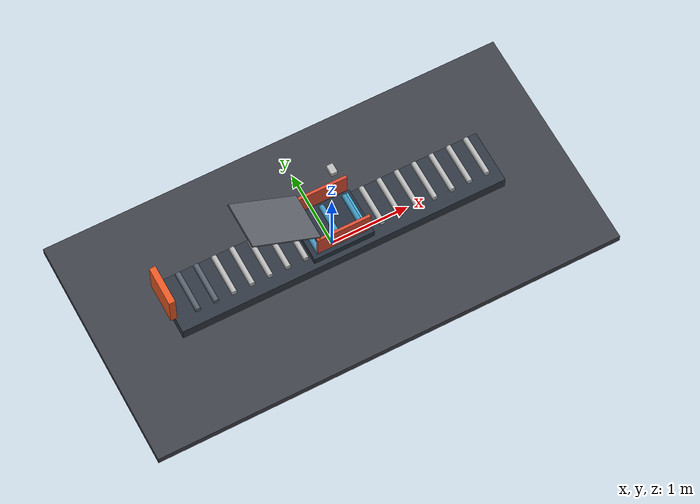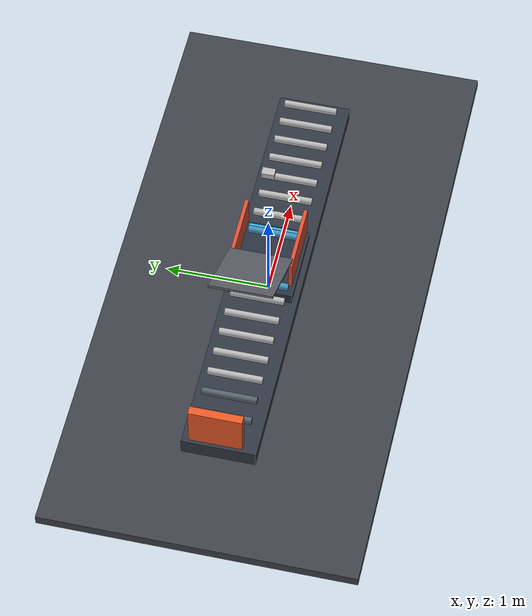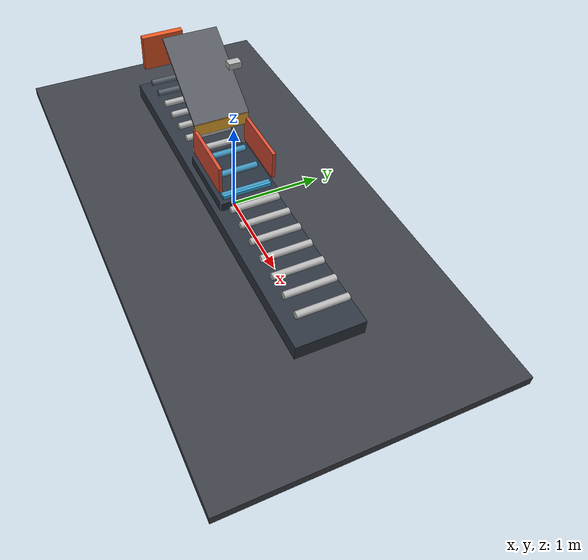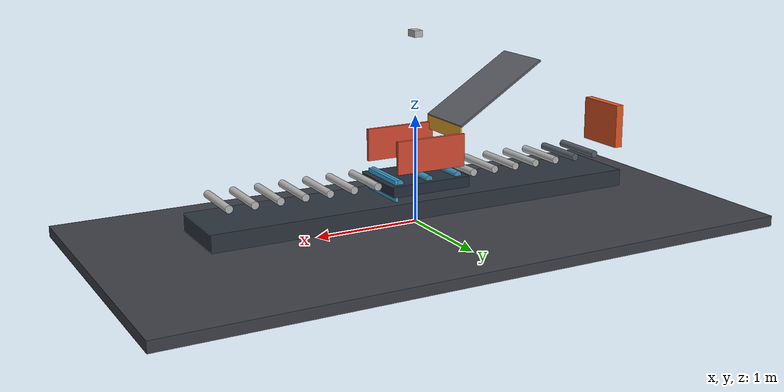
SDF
<?xml version="1.0"?>
<sdf version="1.10">
  <world name="kty_mechatronics">
    <gravity>0 0 -9.81</gravity>
    <physics name="kty_mechatronics_physics" type="ignored">
      <max_step_size>0.001</max_step_size>
      <real_time_factor>1.0</real_time_factor>
      <real_time_update_rate>1000</real_time_update_rate>
    </physics>

    <plugin filename="gz-sim-physics-system" name="gz::sim::systems::Physics"/>
    <plugin filename="gz-sim-user-commands-system" name="gz::sim::systems::UserCommands"/>
    <plugin filename="gz-sim-scene-broadcaster-system" name="gz::sim::systems::SceneBroadcaster"/>
    <plugin filename="gz-sim-sensors-system" name="gz::sim::systems::Sensors">
      <render_engine>ogre2</render_engine>
    </plugin>

    <scene>
      <ambient>0.48 0.48 0.48</ambient>
      <background>0.13 0.15 0.19</background>
      <grid>true</grid>
    </scene>

    <light type="directional" name="sun">
      <pose>-3 -4 8 0 0 0</pose>
      <cast_shadows>true</cast_shadows>
      <diffuse>0.95 0.95 0.95 1</diffuse>
      <specular>0.25 0.25 0.25 1</specular>
      <direction>0.3 0.4 -1.0</direction>
    </light>

    <model name="floor">
      <static>true</static>
      <pose>0 0 -0.05 0 0 0</pose>
      <link name="floor">
        <collision name="collision"><geometry><box><size>6.0 3.0 0.10</size></box></geometry></collision>
        <visual name="visual"><geometry><box><size>6.0 3.0 0.10</size></box></geometry><material><ambient>0.17 0.18 0.20 1</ambient><diffuse>0.24 0.25 0.28 1</diffuse></material></visual>
      </link>
    </model>

    <model name="kty_mechatronics_machine">
      <self_collide>false</self_collide>
      <link name="base">
        <pose>0 0 0.22 0 0 0</pose>
        <inertial><mass>200</mass><inertia><ixx>30</ixx><iyy>80</iyy><izz>100</izz><ixy>0</ixy><ixz>0</ixz><iyz>0</iyz></inertia></inertial>
        <collision name="frame"><geometry><box><size>4.20 0.70 0.16</size></box></geometry></collision>
        <visual name="frame_visual"><geometry><box><size>4.20 0.70 0.16</size></box></geometry><material><ambient>0.10 0.12 0.15 1</ambient><diffuse>0.18 0.21 0.25 1</diffuse></material></visual>
      </link>
      <joint name="base_world_fixed" type="fixed"><parent>world</parent><child>base</child></joint>

      <link name="vibration_deck">
        <pose>0 0 0.405 0 0 0</pose>
        <inertial><mass>35</mass><inertia><ixx>1.8</ixx><iyy>2.4</iyy><izz>3.0</izz><ixy>0</ixy><ixz>0</ixz><iyz>0</iyz></inertia></inertial>
        <collision name="deck"><geometry><box><size>0.78 0.62 0.10</size></box></geometry></collision>
        <visual name="deck_visual"><geometry><box><size>0.78 0.62 0.10</size></box></geometry><material><ambient>0.08 0.10 0.13 1</ambient><diffuse>0.15 0.19 0.24 1</diffuse></material></visual>
      </link>
      <joint name="vibration_joint" type="prismatic">
        <parent>base</parent><child>vibration_deck</child>
        <axis><xyz>0 0 1</xyz><limit><lower>-0.004</lower><upper>0.004</upper><effort>8000</effort><velocity>1.5</velocity></limit><dynamics><damping>180</damping><friction>10</friction></dynamics></axis>
      </joint>

      <link name="infeed_roller_01"><pose>-1.850 0 0.465 1.57079632679 0 0</pose><inertial><mass>0.45</mass><inertia><ixx>0.0105</ixx><iyy>0.00030</iyy><izz>0.0105</izz><ixy>0</ixy><ixz>0</ixz><iyz>0</iyz></inertia></inertial><collision name="collision"><geometry><cylinder><radius>0.035</radius><length>0.52</length></cylinder></geometry><surface><friction><ode><mu>1.20</mu><mu2>0.90</mu2><slip1>0.01</slip1><slip2>0.01</slip2></ode></friction><bounce><restitution_coefficient>0.01</restitution_coefficient><threshold>0.2</threshold></bounce><contact><ode><kp>8000000</kp><kd>180</kd><max_vel>0.05</max_vel><min_depth>0.0002</min_depth></ode></contact></surface></collision><visual name="visual"><geometry><cylinder><radius>0.035</radius><length>0.52</length></cylinder></geometry><material><ambient>0.19 0.22 0.25 1</ambient><diffuse>0.34 0.38 0.42 1</diffuse><specular>0.35 0.35 0.35 1</specular></material></visual></link>
      <joint name="infeed_roller_01_joint" type="revolute"><parent>base</parent><child>infeed_roller_01</child><axis><xyz>0 1 0</xyz><limit><effort>120</effort><velocity>40</velocity></limit><dynamics><damping>0.02</damping><friction>0.01</friction></dynamics></axis></joint>
      <link name="infeed_roller_02"><pose>-1.620 0 0.465 1.57079632679 0 0</pose><inertial><mass>0.45</mass><inertia><ixx>0.0105</ixx><iyy>0.00030</iyy><izz>0.0105</izz><ixy>0</ixy><ixz>0</ixz><iyz>0</iyz></inertia></inertial><collision name="collision"><geometry><cylinder><radius>0.035</radius><length>0.52</length></cylinder></geometry><surface><friction><ode><mu>1.20</mu><mu2>0.90</mu2><slip1>0.01</slip1><slip2>0.01</slip2></ode></friction></surface></collision><visual name="visual"><geometry><cylinder><radius>0.035</radius><length>0.52</length></cylinder></geometry><material><ambient>0.19 0.22 0.25 1</ambient><diffuse>0.34 0.38 0.42 1</diffuse></material></visual></link>
      <joint name="infeed_roller_02_joint" type="revolute"><parent>base</parent><child>infeed_roller_02</child><axis><xyz>0 1 0</xyz><limit><effort>120</effort><velocity>40</velocity></limit></axis></joint>
      <link name="infeed_roller_03"><pose>-1.390 0 0.465 1.57079632679 0 0</pose><inertial><mass>0.45</mass><inertia><ixx>0.0105</ixx><iyy>0.00030</iyy><izz>0.0105</izz><ixy>0</ixy><ixz>0</ixz><iyz>0</iyz></inertia></inertial><collision name="collision"><geometry><cylinder><radius>0.035</radius><length>0.52</length></cylinder></geometry><surface><friction><ode><mu>1.20</mu><mu2>0.90</mu2></ode></friction></surface></collision><visual name="visual"><geometry><cylinder><radius>0.035</radius><length>0.52</length></cylinder></geometry></visual></link>
      <joint name="infeed_roller_03_joint" type="revolute"><parent>base</parent><child>infeed_roller_03</child><axis><xyz>0 1 0</xyz><limit><effort>120</effort><velocity>40</velocity></limit></axis></joint>
      <link name="infeed_roller_04"><pose>-1.160 0 0.465 1.57079632679 0 0</pose><inertial><mass>0.45</mass><inertia><ixx>0.0105</ixx><iyy>0.00030</iyy><izz>0.0105</izz><ixy>0</ixy><ixz>0</ixz><iyz>0</iyz></inertia></inertial><collision name="collision"><geometry><cylinder><radius>0.035</radius><length>0.52</length></cylinder></geometry><surface><friction><ode><mu>1.20</mu><mu2>0.90</mu2></ode></friction></surface></collision><visual name="visual"><geometry><cylinder><radius>0.035</radius><length>0.52</length></cylinder></geometry></visual></link>
      <joint name="infeed_roller_04_joint" type="revolute"><parent>base</parent><child>infeed_roller_04</child><axis><xyz>0 1 0</xyz><limit><effort>120</effort><velocity>40</velocity></limit></axis></joint>
      <link name="infeed_roller_05"><pose>-0.930 0 0.465 1.57079632679 0 0</pose><inertial><mass>0.45</mass><inertia><ixx>0.0105</ixx><iyy>0.00030</iyy><izz>0.0105</izz><ixy>0</ixy><ixz>0</ixz><iyz>0</iyz></inertia></inertial><collision name="collision"><geometry><cylinder><radius>0.035</radius><length>0.52</length></cylinder></geometry><surface><friction><ode><mu>1.20</mu><mu2>0.90</mu2></ode></friction></surface></collision><visual name="visual"><geometry><cylinder><radius>0.035</radius><length>0.52</length></cylinder></geometry></visual></link>
      <joint name="infeed_roller_05_joint" type="revolute"><parent>base</parent><child>infeed_roller_05</child><axis><xyz>0 1 0</xyz><limit><effort>120</effort><velocity>40</velocity></limit></axis></joint>
      <link name="infeed_roller_06"><pose>-0.700 0 0.465 1.57079632679 0 0</pose><inertial><mass>0.45</mass><inertia><ixx>0.0105</ixx><iyy>0.00030</iyy><izz>0.0105</izz><ixy>0</ixy><ixz>0</ixz><iyz>0</iyz></inertia></inertial><collision name="collision"><geometry><cylinder><radius>0.035</radius><length>0.52</length></cylinder></geometry><surface><friction><ode><mu>1.20</mu><mu2>0.90</mu2></ode></friction></surface></collision><visual name="visual"><geometry><cylinder><radius>0.035</radius><length>0.52</length></cylinder></geometry></visual></link>
      <joint name="infeed_roller_06_joint" type="revolute"><parent>base</parent><child>infeed_roller_06</child><axis><xyz>0 1 0</xyz><limit><effort>120</effort><velocity>40</velocity></limit></axis></joint>
      <link name="infeed_roller_07"><pose>-0.470 0 0.465 1.57079632679 0 0</pose><inertial><mass>0.45</mass><inertia><ixx>0.0105</ixx><iyy>0.00030</iyy><izz>0.0105</izz><ixy>0</ixy><ixz>0</ixz><iyz>0</iyz></inertia></inertial><collision name="collision"><geometry><cylinder><radius>0.035</radius><length>0.52</length></cylinder></geometry><surface><friction><ode><mu>1.20</mu><mu2>0.90</mu2></ode></friction></surface></collision><visual name="visual"><geometry><cylinder><radius>0.035</radius><length>0.52</length></cylinder></geometry></visual></link>
      <joint name="infeed_roller_07_joint" type="revolute"><parent>base</parent><child>infeed_roller_07</child><axis><xyz>0 1 0</xyz><limit><effort>120</effort><velocity>40</velocity></limit></axis></joint>

      <link name="active_roller_01"><pose>-0.300 0 0.465 1.57079632679 0 0</pose><inertial><mass>0.45</mass><inertia><ixx>0.0105</ixx><iyy>0.00030</iyy><izz>0.0105</izz><ixy>0</ixy><ixz>0</ixz><iyz>0</iyz></inertia></inertial><collision name="collision"><geometry><cylinder><radius>0.035</radius><length>0.52</length></cylinder></geometry><surface><friction><ode><mu>1.20</mu><mu2>0.90</mu2></ode></friction></surface></collision><visual name="visual"><geometry><cylinder><radius>0.035</radius><length>0.52</length></cylinder></geometry><material><ambient>0.20 0.42 0.55 1</ambient><diffuse>0.25 0.58 0.74 1</diffuse></material></visual></link>
      <joint name="active_roller_01_joint" type="revolute"><parent>vibration_deck</parent><child>active_roller_01</child><axis><xyz>0 1 0</xyz><limit><effort>120</effort><velocity>40</velocity></limit></axis></joint>
      <link name="active_roller_02"><pose>0 0 0.465 1.57079632679 0 0</pose><inertial><mass>0.45</mass><inertia><ixx>0.0105</ixx><iyy>0.00030</iyy><izz>0.0105</izz><ixy>0</ixy><ixz>0</ixz><iyz>0</iyz></inertia></inertial><collision name="collision"><geometry><cylinder><radius>0.035</radius><length>0.52</length></cylinder></geometry><surface><friction><ode><mu>1.20</mu><mu2>0.90</mu2></ode></friction></surface></collision><visual name="visual"><geometry><cylinder><radius>0.035</radius><length>0.52</length></cylinder></geometry><material><ambient>0.20 0.42 0.55 1</ambient><diffuse>0.25 0.58 0.74 1</diffuse></material></visual></link>
      <joint name="active_roller_02_joint" type="revolute"><parent>vibration_deck</parent><child>active_roller_02</child><axis><xyz>0 1 0</xyz><limit><effort>120</effort><velocity>40</velocity></limit></axis></joint>
      <link name="active_roller_03"><pose>0.300 0 0.465 1.57079632679 0 0</pose><inertial><mass>0.45</mass><inertia><ixx>0.0105</ixx><iyy>0.00030</iyy><izz>0.0105</izz><ixy>0</ixy><ixz>0</ixz><iyz>0</iyz></inertia></inertial><collision name="collision"><geometry><cylinder><radius>0.035</radius><length>0.52</length></cylinder></geometry><surface><friction><ode><mu>1.20</mu><mu2>0.90</mu2></ode></friction></surface></collision><visual name="visual"><geometry><cylinder><radius>0.035</radius><length>0.52</length></cylinder></geometry><material><ambient>0.20 0.42 0.55 1</ambient><diffuse>0.25 0.58 0.74 1</diffuse></material></visual></link>
      <joint name="active_roller_03_joint" type="revolute"><parent>vibration_deck</parent><child>active_roller_03</child><axis><xyz>0 1 0</xyz><limit><effort>120</effort><velocity>40</velocity></limit></axis></joint>

      <link name="outfeed_roller_01"><pose>0.520 0 0.465 1.57079632679 0 0</pose><inertial><mass>0.45</mass><inertia><ixx>0.0105</ixx><iyy>0.00030</iyy><izz>0.0105</izz><ixy>0</ixy><ixz>0</ixz><iyz>0</iyz></inertia></inertial><collision name="collision"><geometry><cylinder><radius>0.035</radius><length>0.52</length></cylinder></geometry><surface><friction><ode><mu>1.20</mu><mu2>0.90</mu2></ode></friction></surface></collision><visual name="visual"><geometry><cylinder><radius>0.035</radius><length>0.52</length></cylinder></geometry></visual></link>
      <joint name="outfeed_roller_01_joint" type="revolute"><parent>base</parent><child>outfeed_roller_01</child><axis><xyz>0 1 0</xyz><limit><effort>120</effort><velocity>40</velocity></limit></axis></joint>
      <link name="outfeed_roller_02"><pose>0.750 0 0.465 1.57079632679 0 0</pose><inertial><mass>0.45</mass><inertia><ixx>0.0105</ixx><iyy>0.00030</iyy><izz>0.0105</izz><ixy>0</ixy><ixz>0</ixz><iyz>0</iyz></inertia></inertial><collision name="collision"><geometry><cylinder><radius>0.035</radius><length>0.52</length></cylinder></geometry><surface><friction><ode><mu>1.20</mu><mu2>0.90</mu2></ode></friction></surface></collision><visual name="visual"><geometry><cylinder><radius>0.035</radius><length>0.52</length></cylinder></geometry></visual></link>
      <joint name="outfeed_roller_02_joint" type="revolute"><parent>base</parent><child>outfeed_roller_02</child><axis><xyz>0 1 0</xyz><limit><effort>120</effort><velocity>40</velocity></limit></axis></joint>
      <link name="outfeed_roller_03"><pose>0.980 0 0.465 1.57079632679 0 0</pose><inertial><mass>0.45</mass><inertia><ixx>0.0105</ixx><iyy>0.00030</iyy><izz>0.0105</izz><ixy>0</ixy><ixz>0</ixz><iyz>0</iyz></inertia></inertial><collision name="collision"><geometry><cylinder><radius>0.035</radius><length>0.52</length></cylinder></geometry><surface><friction><ode><mu>1.20</mu><mu2>0.90</mu2></ode></friction></surface></collision><visual name="visual"><geometry><cylinder><radius>0.035</radius><length>0.52</length></cylinder></geometry></visual></link>
      <joint name="outfeed_roller_03_joint" type="revolute"><parent>base</parent><child>outfeed_roller_03</child><axis><xyz>0 1 0</xyz><limit><effort>120</effort><velocity>40</velocity></limit></axis></joint>
      <link name="outfeed_roller_04"><pose>1.210 0 0.465 1.57079632679 0 0</pose><inertial><mass>0.45</mass><inertia><ixx>0.0105</ixx><iyy>0.00030</iyy><izz>0.0105</izz><ixy>0</ixy><ixz>0</ixz><iyz>0</iyz></inertia></inertial><collision name="collision"><geometry><cylinder><radius>0.035</radius><length>0.52</length></cylinder></geometry><surface><friction><ode><mu>1.20</mu><mu2>0.90</mu2></ode></friction></surface></collision><visual name="visual"><geometry><cylinder><radius>0.035</radius><length>0.52</length></cylinder></geometry></visual></link>
      <joint name="outfeed_roller_04_joint" type="revolute"><parent>base</parent><child>outfeed_roller_04</child><axis><xyz>0 1 0</xyz><limit><effort>120</effort><velocity>40</velocity></limit></axis></joint>
      <link name="outfeed_roller_05"><pose>1.440 0 0.465 1.57079632679 0 0</pose><inertial><mass>0.45</mass><inertia><ixx>0.0105</ixx><iyy>0.00030</iyy><izz>0.0105</izz><ixy>0</ixy><ixz>0</ixz><iyz>0</iyz></inertia></inertial><collision name="collision"><geometry><cylinder><radius>0.035</radius><length>0.52</length></cylinder></geometry><surface><friction><ode><mu>1.20</mu><mu2>0.90</mu2></ode></friction></surface></collision><visual name="visual"><geometry><cylinder><radius>0.035</radius><length>0.52</length></cylinder></geometry></visual></link>
      <joint name="outfeed_roller_05_joint" type="revolute"><parent>base</parent><child>outfeed_roller_05</child><axis><xyz>0 1 0</xyz><limit><effort>120</effort><velocity>40</velocity></limit></axis></joint>
      <link name="outfeed_roller_06"><pose>1.670 0 0.465 1.57079632679 0 0</pose><inertial><mass>0.45</mass><inertia><ixx>0.0105</ixx><iyy>0.00030</iyy><izz>0.0105</izz><ixy>0</ixy><ixz>0</ixz><iyz>0</iyz></inertia></inertial><collision name="collision"><geometry><cylinder><radius>0.035</radius><length>0.52</length></cylinder></geometry><surface><friction><ode><mu>1.20</mu><mu2>0.90</mu2></ode></friction></surface></collision><visual name="visual"><geometry><cylinder><radius>0.035</radius><length>0.52</length></cylinder></geometry></visual></link>
      <joint name="outfeed_roller_06_joint" type="revolute"><parent>base</parent><child>outfeed_roller_06</child><axis><xyz>0 1 0</xyz><limit><effort>120</effort><velocity>40</velocity></limit></axis></joint>
      <link name="outfeed_roller_07"><pose>1.900 0 0.465 1.57079632679 0 0</pose><inertial><mass>0.45</mass><inertia><ixx>0.0105</ixx><iyy>0.00030</iyy><izz>0.0105</izz><ixy>0</ixy><ixz>0</ixz><iyz>0</iyz></inertia></inertial><collision name="collision"><geometry><cylinder><radius>0.035</radius><length>0.52</length></cylinder></geometry><surface><friction><ode><mu>1.20</mu><mu2>0.90</mu2></ode></friction></surface></collision><visual name="visual"><geometry><cylinder><radius>0.035</radius><length>0.52</length></cylinder></geometry></visual></link>
      <joint name="outfeed_roller_07_joint" type="revolute"><parent>base</parent><child>outfeed_roller_07</child><axis><xyz>0 1 0</xyz><limit><effort>120</effort><velocity>40</velocity></limit></axis></joint>

      <link name="pusher"><pose>-2.15 0 0.705 0 0 0</pose><inertial><mass>12</mass><inertia><ixx>0.22</ixx><iyy>0.20</iyy><izz>0.18</izz><ixy>0</ixy><ixz>0</ixz><iyz>0</iyz></inertia></inertial><collision name="plate"><geometry><box><size>0.08 0.50 0.42</size></box></geometry></collision><visual name="plate_visual"><geometry><box><size>0.08 0.50 0.42</size></box></geometry><material><ambient>0.72 0.26 0.12 1</ambient><diffuse>0.90 0.34 0.14 1</diffuse></material></visual></link>
      <joint name="pusher_joint" type="prismatic"><parent>base</parent><child>pusher</child><axis><xyz>1 0 0</xyz><limit><lower>0</lower><upper>0.95</upper><effort>2500</effort><velocity>0.75</velocity></limit><dynamics><damping>80</damping><friction>15</friction></dynamics></axis></joint>

      <link name="clamp_neg_y"><pose>0 -0.285 0.705 0 0 0</pose><inertial><mass>8</mass><inertia><ixx>0.16</ixx><iyy>0.30</iyy><izz>0.30</izz><ixy>0</ixy><ixz>0</ixz><iyz>0</iyz></inertia></inertial><collision name="pad"><geometry><box><size>0.68 0.035 0.30</size></box></geometry><surface><friction><ode><mu>1.0</mu><mu2>1.0</mu2></ode></friction></surface></collision><visual name="pad_visual"><geometry><box><size>0.68 0.035 0.30</size></box></geometry><material><ambient>0.70 0.22 0.16 1</ambient><diffuse>0.85 0.30 0.20 1</diffuse></material></visual></link>
      <joint name="clamp_neg_y_joint" type="prismatic"><parent>vibration_deck</parent><child>clamp_neg_y</child><axis><xyz>0 1 0</xyz><limit><lower>0</lower><upper>0.075</upper><effort>1600</effort><velocity>0.25</velocity></limit><dynamics><damping>80</damping><friction>8</friction></dynamics></axis></joint>
      <link name="clamp_pos_y"><pose>0 0.285 0.705 0 0 0</pose><inertial><mass>8</mass><inertia><ixx>0.16</ixx><iyy>0.30</iyy><izz>0.30</izz><ixy>0</ixy><ixz>0</ixz><iyz>0</iyz></inertia></inertial><collision name="pad"><geometry><box><size>0.68 0.035 0.30</size></box></geometry><surface><friction><ode><mu>1.0</mu><mu2>1.0</mu2></ode></friction></surface></collision><visual name="pad_visual"><geometry><box><size>0.68 0.035 0.30</size></box></geometry><material><ambient>0.70 0.22 0.16 1</ambient><diffuse>0.85 0.30 0.20 1</diffuse></material></visual></link>
      <joint name="clamp_pos_y_joint" type="prismatic"><parent>vibration_deck</parent><child>clamp_pos_y</child><axis><xyz>0 -1 0</xyz><limit><lower>0</lower><upper>0.075</upper><effort>1600</effort><velocity>0.25</velocity></limit><dynamics><damping>80</damping><friction>8</friction></dynamics></axis></joint>

      <link name="locator_stop"><pose>0.335 0 0.385 0 0 0</pose><inertial><mass>6</mass><inertia><ixx>0.08</ixx><iyy>0.05</iyy><izz>0.08</izz><ixy>0</ixy><ixz>0</ixz><iyz>0</iyz></inertia></inertial><collision name="blade"><geometry><box><size>0.025 0.52 0.22</size></box></geometry></collision><visual name="blade_visual"><geometry><box><size>0.025 0.52 0.22</size></box></geometry><material><ambient>0.18 0.55 0.72 1</ambient><diffuse>0.24 0.70 0.90 1</diffuse></material></visual></link>
      <joint name="locator_stop_joint" type="prismatic"><parent>vibration_deck</parent><child>locator_stop</child><axis><xyz>0 0 1</xyz><limit><lower>0</lower><upper>0.225</upper><effort>1200</effort><velocity>0.7</velocity></limit><dynamics><damping>60</damping><friction>5</friction></dynamics></axis></joint>

      <link name="gate"><pose>-0.305 0 0.920 0 0 0</pose><inertial><pose>0 0 -0.065 0 0 0</pose><mass>4.0</mass><inertia><ixx>0.12</ixx><iyy>0.03</iyy><izz>0.12</izz><ixy>0</ixy><ixz>0</ixz><iyz>0</iyz></inertia></inertial><collision name="blade"><pose>0 0 -0.065 0 0 0</pose><geometry><box><size>0.012 0.59 0.13</size></box></geometry></collision><visual name="blade_visual"><pose>0 0 -0.065 0 0 0</pose><geometry><box><size>0.012 0.59 0.13</size></box></geometry><material><ambient>0.78 0.55 0.12 1</ambient><diffuse>0.95 0.68 0.18 1</diffuse></material></visual></link>
      <joint name="gate_joint" type="revolute"><parent>base</parent><child>gate</child><axis><xyz>0 1 0</xyz><limit><lower>0</lower><upper>1.35</upper><effort>900</effort><velocity>3.5</velocity></limit><dynamics><damping>12</damping><friction>2</friction></dynamics></axis></joint>

      <plugin filename="gz-sim-joint-controller-system" name="gz::sim::systems::JointController"><joint_name>infeed_roller_01_joint</joint_name><joint_name>infeed_roller_02_joint</joint_name><joint_name>infeed_roller_03_joint</joint_name><joint_name>infeed_roller_04_joint</joint_name><joint_name>infeed_roller_05_joint</joint_name><joint_name>infeed_roller_06_joint</joint_name><joint_name>infeed_roller_07_joint</joint_name><topic>/kty/mech/infeed_rollers/cmd_vel</topic><initial_velocity>0</initial_velocity></plugin>
      <plugin filename="gz-sim-joint-controller-system" name="gz::sim::systems::JointController"><joint_name>active_roller_01_joint</joint_name><joint_name>active_roller_02_joint</joint_name><joint_name>active_roller_03_joint</joint_name><topic>/kty/mech/active_rollers/cmd_vel</topic><initial_velocity>0</initial_velocity></plugin>
      <plugin filename="gz-sim-joint-controller-system" name="gz::sim::systems::JointController"><joint_name>outfeed_roller_01_joint</joint_name><joint_name>outfeed_roller_02_joint</joint_name><joint_name>outfeed_roller_03_joint</joint_name><joint_name>outfeed_roller_04_joint</joint_name><joint_name>outfeed_roller_05_joint</joint_name><joint_name>outfeed_roller_06_joint</joint_name><joint_name>outfeed_roller_07_joint</joint_name><topic>/kty/mech/outfeed_rollers/cmd_vel</topic><initial_velocity>0</initial_velocity></plugin>
      <plugin filename="gz-sim-joint-position-controller-system" name="gz::sim::systems::JointPositionController"><joint_name>pusher_joint</joint_name><topic>/kty/mech/pusher/cmd_pos</topic><p_gain>2800</p_gain><i_gain>0</i_gain><d_gain>220</d_gain><cmd_max>2500</cmd_max><cmd_min>-2500</cmd_min></plugin>
      <plugin filename="gz-sim-joint-position-controller-system" name="gz::sim::systems::JointPositionController"><joint_name>clamp_neg_y_joint</joint_name><joint_name>clamp_pos_y_joint</joint_name><topic>/kty/mech/clamps/cmd_pos</topic><p_gain>5000</p_gain><i_gain>0</i_gain><d_gain>180</d_gain><cmd_max>1600</cmd_max><cmd_min>-1600</cmd_min></plugin>
      <plugin filename="gz-sim-joint-position-controller-system" name="gz::sim::systems::JointPositionController"><joint_name>vibration_joint</joint_name><topic>/kty/mech/vibration/cmd_pos</topic><p_gain>180000</p_gain><i_gain>0</i_gain><d_gain>1800</d_gain><cmd_max>8000</cmd_max><cmd_min>-8000</cmd_min></plugin>
      <plugin filename="gz-sim-joint-position-controller-system" name="gz::sim::systems::JointPositionController"><joint_name>locator_stop_joint</joint_name><topic>/kty/mech/locator_stop/cmd_pos</topic><p_gain>4200</p_gain><i_gain>0</i_gain><d_gain>180</d_gain><cmd_max>1200</cmd_max><cmd_min>-1200</cmd_min></plugin>
      <plugin filename="gz-sim-joint-position-controller-system" name="gz::sim::systems::JointPositionController"><joint_name>gate_joint</joint_name><topic>/kty/mech/gate/cmd_pos</topic><p_gain>2600</p_gain><i_gain>0</i_gain><d_gain>140</d_gain><cmd_max>900</cmd_max><cmd_min>-900</cmd_min></plugin>
      <plugin filename="gz-sim-joint-state-publisher-system" name="gz::sim::systems::JointStatePublisher"><topic>/kty/mech/joint_state</topic></plugin>
    </model>

    <model name="kty_product_chute"><static>true</static><pose>-0.730 0 1.185 0 0.5585053606 0</pose><link name="chute"><collision name="bed_collision"><geometry><box><size>1.000 0.600 0.020</size></box></geometry><surface><friction><ode><mu>0.20</mu><mu2>0.20</mu2><fdir1>1 0 0</fdir1></ode></friction></surface></collision><visual name="bed_visual"><geometry><box><size>1.000 0.600 0.020</size></box></geometry><material><ambient>0.22 0.23 0.25 1</ambient><diffuse>0.36 0.37 0.40 1</diffuse></material></visual><collision name="rail_neg"><pose>0 -0.310 0.070 0 0 0</pose><geometry><box><size>1.0 0.020 0.16</size></box></geometry></collision><collision name="rail_pos"><pose>0 0.310 0.070 0 0 0</pose><geometry><box><size>1.0 0.020 0.16</size></box></geometry></collision></link></model>

    <model name="kty_mechatronics_vision_station"><static>true</static><link name="camera_link"><pose>0 0 1.75 0 1.57079632679 1.57079632679</pose><visual name="camera_body"><pose>0 0 0 0 -1.57079632679 0</pose><geometry><box><size>0.12 0.08 0.06</size></box></geometry></visual><sensor name="overhead_rgbd" type="rgbd_camera"><always_on>true</always_on><update_rate>15</update_rate><topic>/kty/vision</topic><camera><horizontal_fov>1.05</horizontal_fov><image><width>800</width><height>600</height><format>R8G8B8</format></image><clip><near>0.20</near><far>3.0</far></clip><noise><type>gaussian</type><mean>0.0</mean><stddev>0.001</stddev></noise></camera><visualize>true</visualize></sensor></link></model>

    <gui fullscreen="0">
      <plugin filename="MinimalScene" name="3D View"><gz-gui><title>3D View</title><property type="bool" key="showTitleBar">false</property><property type="string" key="state">docked</property></gz-gui><engine>ogre</engine><scene>scene</scene><ambient_light>0.48 0.48 0.48</ambient_light><background_color>0.13 0.15 0.19</background_color><camera_pose>-4.4 -3.8 3.2 0 0.42 0.72</camera_pose></plugin>
      <plugin filename="EntityContextMenuPlugin" name="Entity context menu"><gz-gui><property key="state" type="string">floating</property><property key="showTitleBar" type="bool">false</property></gz-gui></plugin>
      <plugin filename="GzSceneManager" name="Scene Manager"><gz-gui><property key="state" type="string">floating</property><property key="showTitleBar" type="bool">false</property></gz-gui></plugin>
      <plugin filename="InteractiveViewControl" name="Interactive view control"><gz-gui><property key="state" type="string">floating</property><property key="showTitleBar" type="bool">false</property></gz-gui></plugin>
      <plugin filename="CameraTracking" name="Camera Tracking"><gz-gui><property key="state" type="string">floating</property><property key="showTitleBar" type="bool">false</property></gz-gui></plugin>
      <plugin name="World control" filename="WorldControl"><gz-gui><title>World control</title><property type="bool" key="showTitleBar">0</property><property type="string" key="state">floating</property></gz-gui><play_pause>1</play_pause><step>1</step><start_paused>0</start_paused></plugin>
      <plugin filename="WorldStats" name="World stats"/>
      <plugin filename="EntityTree" name="Entity tree"/>
    </gui>
  </world>
</sdf>
